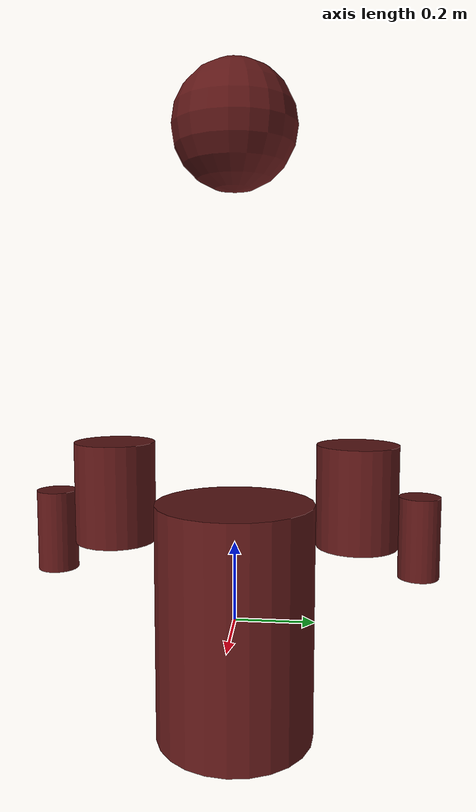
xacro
<?xml version="1.0"?>
<robot xmlns:xacro="http://www.ros.org/wiki/xacro" name="myrobot">
  <!-- Body properties -->
  <xacro:property name="body_radius" value="0.2" />
  <xacro:property name="body_length" value="0.6" />
  <xacro:property name="body_mass" value="2" />
  <xacro:property name="body_ixx" value="0.4" />
  <xacro:property name="body_iyy" value="0.4" />
  <xacro:property name="body_izz" value="0.2" />
  <!-- Thigh properties -->
  <xacro:property name="thigh_radius" value="0.1" />
  <xacro:property name="thigh_length" value="0.25" />
  <xacro:property name="thigh_mass" value="2" />
  <xacro:property name="thigh_ixx" value="0.02" />
  <xacro:property name="thigh_iyy" value="0.02" />
  <xacro:property name="thigh_izz" value="0.01" />
  <!-- Shin properties -->
  <xacro:property name="shin_radius" value="0.05" />
  <xacro:property name="shin_length" value="0.2" />
  <xacro:property name="shin_mass" value="1.5" />
  <xacro:property name="shin_ixx" value="0.015" />
  <xacro:property name="shin_iyy" value="0.015" />
  <xacro:property name="shin_izz" value="0.008" />
  <!-- Foot properties -->
  <xacro:property name="foot_length" value="0.3" />
  <xacro:property name="foot_width" value="0.2" />
  <xacro:property name="foot_height" value="0.05" />
  <xacro:property name="foot_mass" value="0.5" />
  <xacro:property name="foot_ixx" value="0.002" />
  <xacro:property name="foot_iyy" value="0.002" />
  <xacro:property name="foot_izz" value="0.001" />
  <xacro:property name="leg_offset" value="0.0" />
  <!-- Head properties -->
  <xacro:property name="head_radius" value="0.15" />
  <xacro:property name="head_mass" value="0.1" />
  <xacro:property name="head_ixx" value="0.01" />
  <xacro:property name="head_iyy" value="0.01" />
  <xacro:property name="head_izz" value="0.01" />
  <!-- IMU properties -->
  <xacro:property name="imu_length" value="0.03" />
  <xacro:property name="imu_width" value="0.05" />
  <xacro:property name="imu_height" value="0.05" />
  <xacro:property name="imu_mass" value="0.01" />
  <xacro:property name="imu_ixx" value="0.0001" />
  <xacro:property name="imu_iyy" value="0.0001" />
  <xacro:property name="imu_izz" value="0.0001" />
  <!-- Materials -->
  <material name="robot_material">
    <color rgba="0.37 0.09 0.09 1"/>
  </material>
  <!-- Body (main cylinder) -->
<link name="base_link">
  <!-- CENTRO DE MASSA NO MEIO DO CORPO (Z = 0.45m) -->
  <origin xyz="0 0 0"/>
  <visual>
    <!-- Alinha a geometria visual com o CM -->
    <!-- Como o cilindro tem 0.6m de altura, e CM está no meio,
         a base do cilindro fica em Z = 0.3 - 0.3 = 0.0 (no chão) -->
    <origin xyz="0 0 0"/>
    <geometry>
      <cylinder length="0.6" radius="0.2"/>
    </geometry>
    <material name="robot_material"/>
  </visual>
  <collision>
    <!-- Mesma lógica: colisão alinhada ao CM -->
    <origin xyz="0 0 0"/>
    <geometry>
      <cylinder length="0.6" radius="0.2"/>
    </geometry>
  </collision>
  <inertial>
    <mass value="2"/>
    <inertia ixx="0.4" ixy="0.0" ixz="0.0" iyy="0.4" iyz="0.0" izz="0.2"/>
  </inertial>
</link>
  <!-- IMU (simulated sensor, offset from body center) -->
  <link name="imu_link">
    <visual>
      <origin xyz="0 0 0" rpy="0 0 0"/>
      <geometry>
        <box size="${imu_length} ${imu_width} ${imu_height}"/>
      </geometry>
      <material name="robot_material"/>
    </visual>
    <collision>
      <origin xyz="0 0 0" rpy="0 0 0"/>
      <geometry>
        <box size="${imu_length} ${imu_width} ${imu_height}"/>
      </geometry>
    </collision>
    <inertial>
      <mass value="${imu_mass}"/>
      <inertia ixx="${imu_ixx}" ixy="0.0" ixz="0.0" iyy="${imu_iyy}" iyz="0.0" izz="${imu_izz}"/>
    </inertial>
  </link>
  <joint name="base_to_imu" type="fixed">
    <parent link="base_link"/>
    <child link="imu_link"/>
    <!-- Since the body is positioned at 0 0 0, move the joint considering the length of the legs and part of the body -->
    <!-- Z: Move the IMU shin_length + thigh_length, to place it above the legs -->
    <!-- Z: Move the IMU body_length/3 to place it around the middle of the body -->
    <!-- X: Move the IMU body_radius to place it at the edge of the body -->
    <origin xyz="0 0 0"/>
  </joint>
  <!-- Head (sphere) -->
  <link name="head_link">
    <visual>
      <!-- head_radius shifts the Z plane from the heads's center to its base -->
      <origin rpy="0 0 0" xyz="0 0 ${head_radius}"/>
      <geometry>
        <sphere radius="${head_radius}"/>
      </geometry>
      <material name="robot_material"/>
    </visual>
    <collision>
      <origin rpy="0 0 0" xyz="0 0 ${head_radius}"/>
      <geometry>
        <sphere radius="${head_radius}"/>
      </geometry>
    </collision>
    <inertial>
      <mass value="${head_mass}"/>
      <inertia ixx="${head_ixx}" ixy="0.0" ixz="0.0" iyy="${head_iyy}" iyz="0.0" izz="${head_izz}"/>
    </inertial>
  </link>
  <joint name="base_to_head" type="fixed">
    <parent link="base_link"/>
    <child link="head_link"/>
    <!-- Since the body is positioned at 0 0 0, move the joint up considering the length of the legs and the body -->
	  <origin xyz="0 0 ${shin_length + thigh_length + body_length}"/>
  </joint>
  <!-- Leg macro (creates left/right leg: thigh, shin, foot) -->
  <xacro:macro name="leg" params="prefix reflect">
    <!-- Thigh -->
    <link name="${prefix}_thigh_link">
      <visual>
        <origin rpy="0 0 0" xyz="0 0 -${thigh_length/2}"/>
        <geometry>
          <cylinder length="${thigh_length}" radius="${thigh_radius}"/>
        </geometry>
        <material name="robot_material"/>
      </visual>
      <collision>
        <origin rpy="0 0 0" xyz="0 0 -${thigh_length/2}"/>
        <geometry>
          <cylinder length="${thigh_length}" radius="${thigh_radius}"/>
        </geometry>
      </collision>
      <inertial>
        <mass value="${thigh_mass}"/>
        <inertia ixx="${thigh_ixx}" ixy="0.0" ixz="0.0" iyy="${thigh_iyy}" iyz="0.0" izz="${thigh_izz}"/>
      </inertial>
    </link>
    <!-- Hip joint: base_link to thigh -->
    <joint name="base_to_${prefix}_thigh" type="revolute">
      <parent link="base_link"/>
      <child link="${prefix}_thigh_link"/>
      <origin xyz="0 ${(body_radius + thigh_radius + leg_offset) * reflect} ${thigh_length + shin_length}"/>
      <axis xyz="0 1 0"/>
      <limit lower="-1.57" upper="1.57" effort="50" velocity="5"/>
    </joint>
    <!-- Shin -->
    <link name="${prefix}_shin_link">
      <visual>
        <origin rpy="0 0 0" xyz="0 0 -${shin_length/2}"/>
        <geometry>
          <cylinder length="${shin_length}" radius="${shin_radius}"/>
        </geometry>
        <material name="robot_material"/>
      </visual>
      <collision>
        <origin rpy="0 0 0" xyz="0 0 -${shin_length/2}"/>
        <geometry>
          <cylinder length="${shin_length}" radius="${shin_radius}"/>
        </geometry>
      </collision>
      <inertial>
        <mass value="${shin_mass}"/>
        <inertia ixx="${shin_ixx}" ixy="0.0" ixz="0.0" iyy="${shin_iyy}" iyz="0.0" izz="${shin_izz}"/>
      </inertial>
    </link>
    <!-- Knee joint: thigh to shin -->
    <joint name="${prefix}_knee" type="revolute">
      <parent link="${prefix}_thigh_link"/>
      <child link="${prefix}_shin_link"/>
      <origin xyz="0 ${(thigh_radius + shin_radius + leg_offset) * reflect} ${-thigh_length/2}"/>
      <axis xyz="0 1 0"/>
      <limit lower="0" upper="2.36" effort="40" velocity="5"/>
    </joint>
  </xacro:macro>
  <!-- Instantiate right and left legs -->
  <xacro:leg prefix="right" reflect="-1" />
  <xacro:leg prefix="left" reflect="1" />
</robot>
